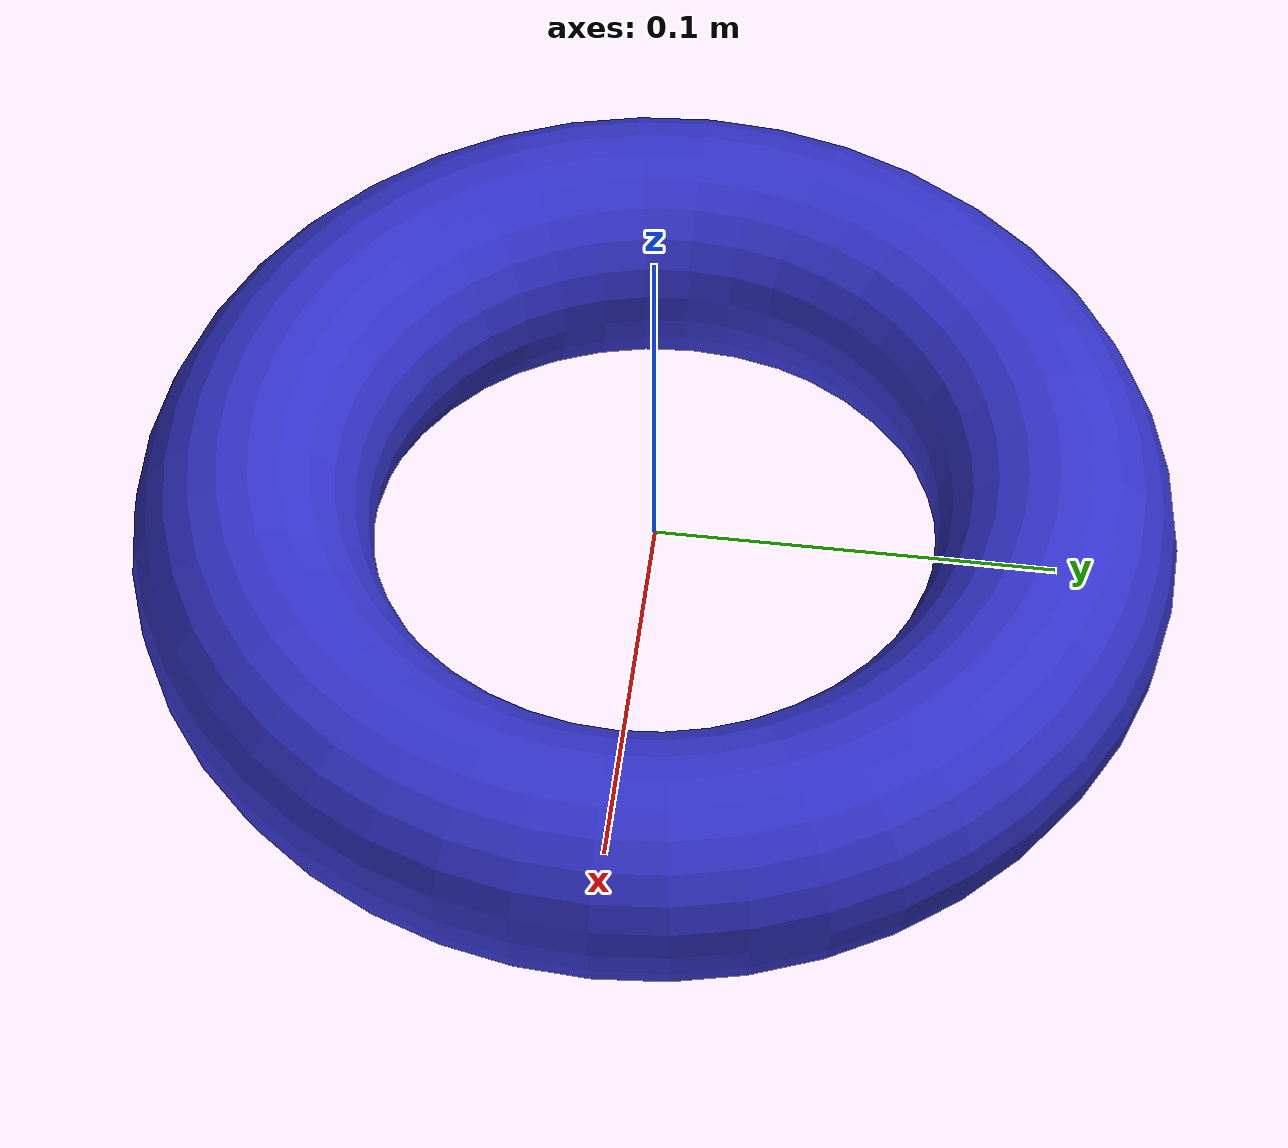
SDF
<?xml version='1.0'?>
    <sdf version='1.7'>
        <model name='disk_1'>
            <link name='torus_link'>
            <inertial>
                <mass>0.2</mass>
                <inertia>
                <ixx>0.001</ixx> <iyy>0.001</iyy> <izz>0.002</izz>
                <ixy>0</ixy> <ixz>0</ixz> <iyz>0</iyz>
                </inertia>
            </inertial>

            <visual name="visual">
                <geometry>
                <mesh>
                    <uri>objects/disk_1.obj</uri>
                </mesh>
                </geometry>
                <material>
                <diffuse>0.2 0.2 0.8 1.0</diffuse>
                </material>
            </visual>

        <collision name='col_0'>
            <pose>0.1000 0.0000 0 1.5708 0 1.5708</pose>
            <geometry>
            <capsule> <radius>0.03</radius> <length>0.010799224746714915</length> </capsule>
            </geometry>
            <surface>
                <friction>
                    <ode>
                        <mu>2.0</mu>
                        <mu2>2.0</mu2>
                    </ode>
                </friction>
                <contact>
                    <ode>
                        <kp>1000000</kp>
                        <kd>100</kd>
                    </ode>
                </contact>
            </surface>
        </collision>

        <collision name='col_1'>
            <pose>0.0995 0.0098 0 1.5708 0 1.6690</pose>
            <geometry>
            <capsule> <radius>0.03</radius> <length>0.010799224746714915</length> </capsule>
            </geometry>
            <surface>
                <friction>
                    <ode>
                        <mu>2.0</mu>
                        <mu2>2.0</mu2>
                    </ode>
                </friction>
                <contact>
                    <ode>
                        <kp>1000000</kp>
                        <kd>100</kd>
                    </ode>
                </contact>
            </surface>
        </collision>

        <collision name='col_2'>
            <pose>0.0981 0.0195 0 1.5708 0 1.7671</pose>
            <geometry>
            <capsule> <radius>0.03</radius> <length>0.010799224746714915</length> </capsule>
            </geometry>
            <surface>
                <friction>
                    <ode>
                        <mu>2.0</mu>
                        <mu2>2.0</mu2>
                    </ode>
                </friction>
                <contact>
                    <ode>
                        <kp>1000000</kp>
                        <kd>100</kd>
                    </ode>
                </contact>
            </surface>
        </collision>

        <collision name='col_3'>
            <pose>0.0957 0.0290 0 1.5708 0 1.8653</pose>
            <geometry>
            <capsule> <radius>0.03</radius> <length>0.010799224746714915</length> </capsule>
            </geometry>
            <surface>
                <friction>
                    <ode>
                        <mu>2.0</mu>
                        <mu2>2.0</mu2>
                    </ode>
                </friction>
                <contact>
                    <ode>
                        <kp>1000000</kp>
                        <kd>100</kd>
                    </ode>
                </contact>
            </surface>
        </collision>

        <collision name='col_4'>
            <pose>0.0924 0.0383 0 1.5708 0 1.9635</pose>
            <geometry>
            <capsule> <radius>0.03</radius> <length>0.010799224746714915</length> </capsule>
            </geometry>
            <surface>
                <friction>
                    <ode>
                        <mu>2.0</mu>
                        <mu2>2.0</mu2>
                    </ode>
                </friction>
                <contact>
                    <ode>
                        <kp>1000000</kp>
                        <kd>100</kd>
                    </ode>
                </contact>
            </surface>
        </collision>

        <collision name='col_5'>
            <pose>0.0882 0.0471 0 1.5708 0 2.0617</pose>
            <geometry>
            <capsule> <radius>0.03</radius> <length>0.010799224746714915</length> </capsule>
            </geometry>
            <surface>
                <friction>
                    <ode>
                        <mu>2.0</mu>
                        <mu2>2.0</mu2>
                    </ode>
                </friction>
                <contact>
                    <ode>
                        <kp>1000000</kp>
                        <kd>100</kd>
                    </ode>
                </contact>
            </surface>
        </collision>

        <collision name='col_6'>
            <pose>0.0831 0.0556 0 1.5708 0 2.1598</pose>
            <geometry>
            <capsule> <radius>0.03</radius> <length>0.010799224746714915</length> </capsule>
            </geometry>
            <surface>
                <friction>
                    <ode>
                        <mu>2.0</mu>
                        <mu2>2.0</mu2>
                    </ode>
                </friction>
                <contact>
                    <ode>
                        <kp>1000000</kp>
                        <kd>100</kd>
                    </ode>
                </contact>
            </surface>
        </collision>

        <collision name='col_7'>
            <pose>0.0773 0.0634 0 1.5708 0 2.2580</pose>
            <geometry>
            <capsule> <radius>0.03</radius> <length>0.010799224746714915</length> </capsule>
            </geometry>
            <surface>
                <friction>
                    <ode>
                        <mu>2.0</mu>
                        <mu2>2.0</mu2>
                    </ode>
                </friction>
                <contact>
                    <ode>
                        <kp>1000000</kp>
                        <kd>100</kd>
                    </ode>
                </contact>
            </surface>
        </collision>

        <collision name='col_8'>
            <pose>0.0707 0.0707 0 1.5708 0 2.3562</pose>
            <geometry>
            <capsule> <radius>0.03</radius> <length>0.010799224746714915</length> </capsule>
            </geometry>
            <surface>
                <friction>
                    <ode>
                        <mu>2.0</mu>
                        <mu2>2.0</mu2>
                    </ode>
                </friction>
                <contact>
                    <ode>
                        <kp>1000000</kp>
                        <kd>100</kd>
                    </ode>
                </contact>
            </surface>
        </collision>

        <collision name='col_9'>
            <pose>0.0634 0.0773 0 1.5708 0 2.4544</pose>
            <geometry>
            <capsule> <radius>0.03</radius> <length>0.010799224746714915</length> </capsule>
            </geometry>
            <surface>
                <friction>
                    <ode>
                        <mu>2.0</mu>
                        <mu2>2.0</mu2>
                    </ode>
                </friction>
                <contact>
                    <ode>
                        <kp>1000000</kp>
                        <kd>100</kd>
                    </ode>
                </contact>
            </surface>
        </collision>

        <collision name='col_10'>
            <pose>0.0556 0.0831 0 1.5708 0 2.5525</pose>
            <geometry>
            <capsule> <radius>0.03</radius> <length>0.010799224746714915</length> </capsule>
            </geometry>
            <surface>
                <friction>
                    <ode>
                        <mu>2.0</mu>
                        <mu2>2.0</mu2>
                    </ode>
                </friction>
                <contact>
                    <ode>
                        <kp>1000000</kp>
                        <kd>100</kd>
                    </ode>
                </contact>
            </surface>
        </collision>

        <collision name='col_11'>
            <pose>0.0471 0.0882 0 1.5708 0 2.6507</pose>
            <geometry>
            <capsule> <radius>0.03</radius> <length>0.010799224746714915</length> </capsule>
            </geometry>
            <surface>
                <friction>
                    <ode>
                        <mu>2.0</mu>
                        <mu2>2.0</mu2>
                    </ode>
                </friction>
                <contact>
                    <ode>
                        <kp>1000000</kp>
                        <kd>100</kd>
                    </ode>
                </contact>
            </surface>
        </collision>

        <collision name='col_12'>
            <pose>0.0383 0.0924 0 1.5708 0 2.7489</pose>
            <geometry>
            <capsule> <radius>0.03</radius> <length>0.010799224746714915</length> </capsule>
            </geometry>
            <surface>
                <friction>
                    <ode>
                        <mu>2.0</mu>
                        <mu2>2.0</mu2>
                    </ode>
                </friction>
                <contact>
                    <ode>
                        <kp>1000000</kp>
                        <kd>100</kd>
                    </ode>
                </contact>
            </surface>
        </collision>

        <collision name='col_13'>
            <pose>0.0290 0.0957 0 1.5708 0 2.8471</pose>
            <geometry>
            <capsule> <radius>0.03</radius> <length>0.010799224746714915</length> </capsule>
            </geometry>
            <surface>
                <friction>
                    <ode>
                        <mu>2.0</mu>
                        <mu2>2.0</mu2>
                    </ode>
                </friction>
                <contact>
                    <ode>
                        <kp>1000000</kp>
                        <kd>100</kd>
                    </ode>
                </contact>
            </surface>
        </collision>

        <collision name='col_14'>
            <pose>0.0195 0.0981 0 1.5708 0 2.9452</pose>
            <geometry>
            <capsule> <radius>0.03</radius> <length>0.010799224746714915</length> </capsule>
            </geometry>
            <surface>
                <friction>
                    <ode>
                        <mu>2.0</mu>
                        <mu2>2.0</mu2>
                    </ode>
                </friction>
                <contact>
                    <ode>
                        <kp>1000000</kp>
                        <kd>100</kd>
                    </ode>
                </contact>
            </surface>
        </collision>

        <collision name='col_15'>
            <pose>0.0098 0.0995 0 1.5708 0 3.0434</pose>
            <geometry>
            <capsule> <radius>0.03</radius> <length>0.010799224746714915</length> </capsule>
            </geometry>
            <surface>
                <friction>
                    <ode>
                        <mu>2.0</mu>
                        <mu2>2.0</mu2>
                    </ode>
                </friction>
                <contact>
                    <ode>
                        <kp>1000000</kp>
                        <kd>100</kd>
                    </ode>
                </contact>
            </surface>
        </collision>

        <collision name='col_16'>
            <pose>0.0000 0.1000 0 1.5708 0 3.1416</pose>
            <geometry>
            <capsule> <radius>0.03</radius> <length>0.010799224746714915</length> </capsule>
            </geometry>
            <surface>
                <friction>
                    <ode>
                        <mu>2.0</mu>
                        <mu2>2.0</mu2>
                    </ode>
                </friction>
                <contact>
                    <ode>
                        <kp>1000000</kp>
                        <kd>100</kd>
                    </ode>
                </contact>
            </surface>
        </collision>

        <collision name='col_17'>
            <pose>-0.0098 0.0995 0 1.5708 0 3.2398</pose>
            <geometry>
            <capsule> <radius>0.03</radius> <length>0.010799224746714915</length> </capsule>
            </geometry>
            <surface>
                <friction>
                    <ode>
                        <mu>2.0</mu>
                        <mu2>2.0</mu2>
                    </ode>
                </friction>
                <contact>
                    <ode>
                        <kp>1000000</kp>
                        <kd>100</kd>
                    </ode>
                </contact>
            </surface>
        </collision>

        <collision name='col_18'>
            <pose>-0.0195 0.0981 0 1.5708 0 3.3379</pose>
            <geometry>
            <capsule> <radius>0.03</radius> <length>0.010799224746714915</length> </capsule>
            </geometry>
            <surface>
                <friction>
                    <ode>
                        <mu>2.0</mu>
                        <mu2>2.0</mu2>
                    </ode>
                </friction>
                <contact>
                    <ode>
                        <kp>1000000</kp>
                        <kd>100</kd>
                    </ode>
                </contact>
            </surface>
        </collision>

        <collision name='col_19'>
            <pose>-0.0290 0.0957 0 1.5708 0 3.4361</pose>
            <geometry>
            <capsule> <radius>0.03</radius> <length>0.010799224746714915</length> </capsule>
            </geometry>
            <surface>
                <friction>
                    <ode>
                        <mu>2.0</mu>
                        <mu2>2.0</mu2>
                    </ode>
                </friction>
                <contact>
                    <ode>
                        <kp>1000000</kp>
                        <kd>100</kd>
                    </ode>
                </contact>
            </surface>
        </collision>

        <collision name='col_20'>
            <pose>-0.0383 0.0924 0 1.5708 0 3.5343</pose>
            <geometry>
            <capsule> <radius>0.03</radius> <length>0.010799224746714915</length> </capsule>
            </geometry>
            <surface>
                <friction>
                    <ode>
                        <mu>2.0</mu>
                        <mu2>2.0</mu2>
                    </ode>
                </friction>
                <contact>
                    <ode>
                        <kp>1000000</kp>
                        <kd>100</kd>
                    </ode>
                </contact>
            </surface>
        </collision>

        <collision name='col_21'>
            <pose>-0.0471 0.0882 0 1.5708 0 3.6325</pose>
            <geometry>
            <capsule> <radius>0.03</radius> <length>0.010799224746714915</length> </capsule>
            </geometry>
            <surface>
                <friction>
                    <ode>
                        <mu>2.0</mu>
                        <mu2>2.0</mu2>
                    </ode>
                </friction>
                <contact>
                    <ode>
                        <kp>1000000</kp>
                        <kd>100</kd>
                    </ode>
                </contact>
            </surface>
        </collision>

        <collision name='col_22'>
            <pose>-0.0556 0.0831 0 1.5708 0 3.7306</pose>
            <geometry>
            <capsule> <radius>0.03</radius> <length>0.010799224746714915</length> </capsule>
            </geometry>
            <surface>
                <friction>
                    <ode>
                        <mu>2.0</mu>
                        <mu2>2.0</mu2>
                    </ode>
                </friction>
                <contact>
                    <ode>
                        <kp>1000000</kp>
                        <kd>100</kd>
                    </ode>
                </contact>
            </surface>
        </collision>

        <collision name='col_23'>
            <pose>-0.0634 0.0773 0 1.5708 0 3.8288</pose>
            <geometry>
            <capsule> <radius>0.03</radius> <length>0.010799224746714915</length> </capsule>
            </geometry>
            <surface>
                <friction>
                    <ode>
                        <mu>2.0</mu>
                        <mu2>2.0</mu2>
                    </ode>
                </friction>
                <contact>
                    <ode>
                        <kp>1000000</kp>
                        <kd>100</kd>
                    </ode>
                </contact>
            </surface>
        </collision>

        <collision name='col_24'>
            <pose>-0.0707 0.0707 0 1.5708 0 3.9270</pose>
            <geometry>
            <capsule> <radius>0.03</radius> <length>0.010799224746714915</length> </capsule>
            </geometry>
            <surface>
                <friction>
                    <ode>
                        <mu>2.0</mu>
                        <mu2>2.0</mu2>
                    </ode>
                </friction>
                <contact>
                    <ode>
                        <kp>1000000</kp>
                        <kd>100</kd>
                    </ode>
                </contact>
            </surface>
        </collision>

        <collision name='col_25'>
            <pose>-0.0773 0.0634 0 1.5708 0 4.0252</pose>
            <geometry>
            <capsule> <radius>0.03</radius> <length>0.010799224746714915</length> </capsule>
            </geometry>
            <surface>
                <friction>
                    <ode>
                        <mu>2.0</mu>
                        <mu2>2.0</mu2>
                    </ode>
                </friction>
                <contact>
                    <ode>
                        <kp>1000000</kp>
                        <kd>100</kd>
                    </ode>
                </contact>
            </surface>
        </collision>

        <collision name='col_26'>
            <pose>-0.0831 0.0556 0 1.5708 0 4.1233</pose>
            <geometry>
            <capsule> <radius>0.03</radius> <length>0.010799224746714915</length> </capsule>
            </geometry>
            <surface>
                <friction>
                    <ode>
                        <mu>2.0</mu>
                        <mu2>2.0</mu2>
                    </ode>
                </friction>
                <contact>
                    <ode>
                        <kp>1000000</kp>
                        <kd>100</kd>
                    </ode>
                </contact>
            </surface>
        </collision>

        <collision name='col_27'>
            <pose>-0.0882 0.0471 0 1.5708 0 4.2215</pose>
            <geometry>
            <capsule> <radius>0.03</radius> <length>0.010799224746714915</length> </capsule>
            </geometry>
            <surface>
                <friction>
                    <ode>
                        <mu>2.0</mu>
                        <mu2>2.0</mu2>
                    </ode>
                </friction>
                <contact>
                    <ode>
                        <kp>1000000</kp>
                        <kd>100</kd>
                    </ode>
                </contact>
            </surface>
        </collision>

        <collision name='col_28'>
            <pose>-0.0924 0.0383 0 1.5708 0 4.3197</pose>
            <geometry>
            <capsule> <radius>0.03</radius> <length>0.010799224746714915</length> </capsule>
            </geometry>
            <surface>
                <friction>
                    <ode>
                        <mu>2.0</mu>
                        <mu2>2.0</mu2>
                    </ode>
                </friction>
                <contact>
                    <ode>
                        <kp>1000000</kp>
                        <kd>100</kd>
                    </ode>
                </contact>
            </surface>
        </collision>

        <collision name='col_29'>
            <pose>-0.0957 0.0290 0 1.5708 0 4.4179</pose>
            <geometry>
            <capsule> <radius>0.03</radius> <length>0.010799224746714915</length> </capsule>
            </geometry>
            <surface>
                <friction>
                    <ode>
                        <mu>2.0</mu>
                        <mu2>2.0</mu2>
                    </ode>
                </friction>
                <contact>
                    <ode>
                        <kp>1000000</kp>
                        <kd>100</kd>
                    </ode>
                </contact>
            </surface>
        </collision>

        <collision name='col_30'>
            <pose>-0.0981 0.0195 0 1.5708 0 4.5160</pose>
            <geometry>
            <capsule> <radius>0.03</radius> <length>0.010799224746714915</length> </capsule>
            </geometry>
            <surface>
                <friction>
                    <ode>
                        <mu>2.0</mu>
                        <mu2>2.0</mu2>
                    </ode>
                </friction>
                <contact>
                    <ode>
                        <kp>1000000</kp>
                        <kd>100</kd>
                    </ode>
                </contact>
            </surface>
        </collision>

        <collision name='col_31'>
            <pose>-0.0995 0.0098 0 1.5708 0 4.6142</pose>
            <geometry>
            <capsule> <radius>0.03</radius> <length>0.010799224746714915</length> </capsule>
            </geometry>
            <surface>
                <friction>
                    <ode>
                        <mu>2.0</mu>
                        <mu2>2.0</mu2>
                    </ode>
                </friction>
                <contact>
                    <ode>
                        <kp>1000000</kp>
                        <kd>100</kd>
                    </ode>
                </contact>
            </surface>
        </collision>

        <collision name='col_32'>
            <pose>-0.1000 0.0000 0 1.5708 0 4.7124</pose>
            <geometry>
            <capsule> <radius>0.03</radius> <length>0.010799224746714915</length> </capsule>
            </geometry>
            <surface>
                <friction>
                    <ode>
                        <mu>2.0</mu>
                        <mu2>2.0</mu2>
                    </ode>
                </friction>
                <contact>
                    <ode>
                        <kp>1000000</kp>
                        <kd>100</kd>
                    </ode>
                </contact>
            </surface>
        </collision>

        <collision name='col_33'>
            <pose>-0.0995 -0.0098 0 1.5708 0 4.8106</pose>
            <geometry>
            <capsule> <radius>0.03</radius> <length>0.010799224746714915</length> </capsule>
            </geometry>
            <surface>
                <friction>
                    <ode>
                        <mu>2.0</mu>
                        <mu2>2.0</mu2>
                    </ode>
                </friction>
                <contact>
                    <ode>
                        <kp>1000000</kp>
                        <kd>100</kd>
                    </ode>
                </contact>
            </surface>
        </collision>

        <collision name='col_34'>
            <pose>-0.0981 -0.0195 0 1.5708 0 4.9087</pose>
            <geometry>
            <capsule> <radius>0.03</radius> <length>0.010799224746714915</length> </capsule>
            </geometry>
            <surface>
                <friction>
                    <ode>
                        <mu>2.0</mu>
                        <mu2>2.0</mu2>
                    </ode>
                </friction>
                <contact>
                    <ode>
                        <kp>1000000</kp>
                        <kd>100</kd>
                    </ode>
                </contact>
            </surface>
        </collision>

        <collision name='col_35'>
            <pose>-0.0957 -0.0290 0 1.5708 0 5.0069</pose>
            <geometry>
            <capsule> <radius>0.03</radius> <length>0.010799224746714915</length> </capsule>
            </geometry>
            <surface>
                <friction>
                    <ode>
                        <mu>2.0</mu>
                        <mu2>2.0</mu2>
                    </ode>
                </friction>
                <contact>
                    <ode>
                        <kp>1000000</kp>
                        <kd>100</kd>
                    </ode>
                </contact>
            </surface>
        </collision>

        <collision name='col_36'>
            <pose>-0.0924 -0.0383 0 1.5708 0 5.1051</pose>
            <geometry>
            <capsule> <radius>0.03</radius> <length>0.010799224746714915</length> </capsule>
            </geometry>
            <surface>
                <friction>
                    <ode>
                        <mu>2.0</mu>
                        <mu2>2.0</mu2>
                    </ode>
                </friction>
                <contact>
                    <ode>
                        <kp>1000000</kp>
                        <kd>100</kd>
                    </ode>
                </contact>
            </surface>
        </collision>

        <collision name='col_37'>
            <pose>-0.0882 -0.0471 0 1.5708 0 5.2033</pose>
            <geometry>
            <capsule> <radius>0.03</radius> <length>0.010799224746714915</length> </capsule>
            </geometry>
            <surface>
                <friction>
                    <ode>
                        <mu>2.0</mu>
                        <mu2>2.0</mu2>
                    </ode>
                </friction>
                <contact>
                    <ode>
                        <kp>1000000</kp>
                        <kd>100</kd>
                    </ode>
                </contact>
            </surface>
        </collision>

        <collision name='col_38'>
            <pose>-0.0831 -0.0556 0 1.5708 0 5.3014</pose>
            <geometry>
            <capsule> <radius>0.03</radius> <length>0.010799224746714915</length> </capsule>
            </geometry>
            <surface>
                <friction>
                    <ode>
                        <mu>2.0</mu>
                        <mu2>2.0</mu2>
                    </ode>
                </friction>
                <contact>
                    <ode>
                        <kp>1000000</kp>
                        <kd>100</kd>
                    </ode>
                </contact>
            </surface>
        </collision>

        <collision name='col_39'>
            <pose>-0.0773 -0.0634 0 1.5708 0 5.3996</pose>
            <geometry>
            <capsule> <radius>0.03</radius> <length>0.010799224746714915</length> </capsule>
            </geometry>
            <surface>
                <friction>
                    <ode>
                        <mu>2.0</mu>
                        <mu2>2.0</mu2>
                    </ode>
                </friction>
                <contact>
                    <ode>
                        <kp>1000000</kp>
                        <kd>100</kd>
                    </ode>
                </contact>
            </surface>
        </collision>

        <collision name='col_40'>
            <pose>-0.0707 -0.0707 0 1.5708 0 5.4978</pose>
            <geometry>
            <capsule> <radius>0.03</radius> <length>0.010799224746714915</length> </capsule>
            </geometry>
            <surface>
                <friction>
                    <ode>
                        <mu>2.0</mu>
                        <mu2>2.0</mu2>
                    </ode>
                </friction>
                <contact>
                    <ode>
                        <kp>1000000</kp>
                        <kd>100</kd>
                    </ode>
                </contact>
            </surface>
        </collision>

        <collision name='col_41'>
            <pose>-0.0634 -0.0773 0 1.5708 0 5.5960</pose>
            <geometry>
            <capsule> <radius>0.03</radius> <length>0.010799224746714915</length> </capsule>
            </geometry>
            <surface>
                <friction>
                    <ode>
                        <mu>2.0</mu>
                        <mu2>2.0</mu2>
                    </ode>
                </friction>
                <contact>
                    <ode>
                        <kp>1000000</kp>
                        <kd>100</kd>
                    </ode>
                </contact>
            </surface>
        </collision>

        <collision name='col_42'>
            <pose>-0.0556 -0.0831 0 1.5708 0 5.6941</pose>
            <geometry>
            <capsule> <radius>0.03</radius> <length>0.010799224746714915</length> </capsule>
            </geometry>
            <surface>
                <friction>
                    <ode>
                        <mu>2.0</mu>
                        <mu2>2.0</mu2>
                    </ode>
                </friction>
                <contact>
                    <ode>
                        <kp>1000000</kp>
                        <kd>100</kd>
                    </ode>
                </contact>
            </surface>
        </collision>

        <collision name='col_43'>
            <pose>-0.0471 -0.0882 0 1.5708 0 5.7923</pose>
            <geometry>
            <capsule> <radius>0.03</radius> <length>0.010799224746714915</length> </capsule>
            </geometry>
            <surface>
                <friction>
                    <ode>
                        <mu>2.0</mu>
                        <mu2>2.0</mu2>
                    </ode>
                </friction>
                <contact>
                    <ode>
                        <kp>1000000</kp>
                        <kd>100</kd>
                    </ode>
                </contact>
            </surface>
        </collision>

        <collision name='col_44'>
            <pose>-0.0383 -0.0924 0 1.5708 0 5.8905</pose>
            <geometry>
            <capsule> <radius>0.03</radius> <length>0.010799224746714915</length> </capsule>
            </geometry>
            <surface>
                <friction>
                    <ode>
                        <mu>2.0</mu>
                        <mu2>2.0</mu2>
                    </ode>
                </friction>
                <contact>
                    <ode>
                        <kp>1000000</kp>
                        <kd>100</kd>
                    </ode>
                </contact>
            </surface>
        </collision>

        <collision name='col_45'>
            <pose>-0.0290 -0.0957 0 1.5708 0 5.9887</pose>
            <geometry>
            <capsule> <radius>0.03</radius> <length>0.010799224746714915</length> </capsule>
            </geometry>
            <surface>
                <friction>
                    <ode>
                        <mu>2.0</mu>
                        <mu2>2.0</mu2>
                    </ode>
                </friction>
                <contact>
                    <ode>
                        <kp>1000000</kp>
                        <kd>100</kd>
                    </ode>
                </contact>
            </surface>
        </collision>

        <collision name='col_46'>
            <pose>-0.0195 -0.0981 0 1.5708 0 6.0868</pose>
            <geometry>
            <capsule> <radius>0.03</radius> <length>0.010799224746714915</length> </capsule>
            </geometry>
            <surface>
                <friction>
                    <ode>
                        <mu>2.0</mu>
                        <mu2>2.0</mu2>
                    </ode>
                </friction>
                <contact>
                    <ode>
                        <kp>1000000</kp>
                        <kd>100</kd>
                    </ode>
                </contact>
            </surface>
        </collision>

        <collision name='col_47'>
            <pose>-0.0098 -0.0995 0 1.5708 0 6.1850</pose>
            <geometry>
            <capsule> <radius>0.03</radius> <length>0.010799224746714915</length> </capsule>
            </geometry>
            <surface>
                <friction>
                    <ode>
                        <mu>2.0</mu>
                        <mu2>2.0</mu2>
                    </ode>
                </friction>
                <contact>
                    <ode>
                        <kp>1000000</kp>
                        <kd>100</kd>
                    </ode>
                </contact>
            </surface>
        </collision>

        <collision name='col_48'>
            <pose>-0.0000 -0.1000 0 1.5708 0 6.2832</pose>
            <geometry>
            <capsule> <radius>0.03</radius> <length>0.010799224746714915</length> </capsule>
            </geometry>
            <surface>
                <friction>
                    <ode>
                        <mu>2.0</mu>
                        <mu2>2.0</mu2>
                    </ode>
                </friction>
                <contact>
                    <ode>
                        <kp>1000000</kp>
                        <kd>100</kd>
                    </ode>
                </contact>
            </surface>
        </collision>

        <collision name='col_49'>
            <pose>0.0098 -0.0995 0 1.5708 0 6.3814</pose>
            <geometry>
            <capsule> <radius>0.03</radius> <length>0.010799224746714915</length> </capsule>
            </geometry>
            <surface>
                <friction>
                    <ode>
                        <mu>2.0</mu>
                        <mu2>2.0</mu2>
                    </ode>
                </friction>
                <contact>
                    <ode>
                        <kp>1000000</kp>
                        <kd>100</kd>
                    </ode>
                </contact>
            </surface>
        </collision>

        <collision name='col_50'>
            <pose>0.0195 -0.0981 0 1.5708 0 6.4795</pose>
            <geometry>
            <capsule> <radius>0.03</radius> <length>0.010799224746714915</length> </capsule>
            </geometry>
            <surface>
                <friction>
                    <ode>
                        <mu>2.0</mu>
                        <mu2>2.0</mu2>
                    </ode>
                </friction>
                <contact>
                    <ode>
                        <kp>1000000</kp>
                        <kd>100</kd>
                    </ode>
                </contact>
            </surface>
        </collision>

        <collision name='col_51'>
            <pose>0.0290 -0.0957 0 1.5708 0 6.5777</pose>
            <geometry>
            <capsule> <radius>0.03</radius> <length>0.010799224746714915</length> </capsule>
            </geometry>
            <surface>
                <friction>
                    <ode>
                        <mu>2.0</mu>
                        <mu2>2.0</mu2>
                    </ode>
                </friction>
                <contact>
                    <ode>
                        <kp>1000000</kp>
                        <kd>100</kd>
                    </ode>
                </contact>
            </surface>
        </collision>

        <collision name='col_52'>
            <pose>0.0383 -0.0924 0 1.5708 0 6.6759</pose>
            <geometry>
            <capsule> <radius>0.03</radius> <length>0.010799224746714915</length> </capsule>
            </geometry>
            <surface>
                <friction>
                    <ode>
                        <mu>2.0</mu>
                        <mu2>2.0</mu2>
                    </ode>
                </friction>
                <contact>
                    <ode>
                        <kp>1000000</kp>
                        <kd>100</kd>
                    </ode>
                </contact>
            </surface>
        </collision>

        <collision name='col_53'>
            <pose>0.0471 -0.0882 0 1.5708 0 6.7741</pose>
            <geometry>
            <capsule> <radius>0.03</radius> <length>0.010799224746714915</length> </capsule>
            </geometry>
            <surface>
                <friction>
                    <ode>
                        <mu>2.0</mu>
                        <mu2>2.0</mu2>
                    </ode>
                </friction>
                <contact>
                    <ode>
                        <kp>1000000</kp>
                        <kd>100</kd>
                    </ode>
                </contact>
            </surface>
        </collision>

        <collision name='col_54'>
            <pose>0.0556 -0.0831 0 1.5708 0 6.8722</pose>
            <geometry>
            <capsule> <radius>0.03</radius> <length>0.010799224746714915</length> </capsule>
            </geometry>
            <surface>
                <friction>
                    <ode>
                        <mu>2.0</mu>
                        <mu2>2.0</mu2>
                    </ode>
                </friction>
                <contact>
                    <ode>
                        <kp>1000000</kp>
                        <kd>100</kd>
                    </ode>
                </contact>
            </surface>
        </collision>

        <collision name='col_55'>
            <pose>0.0634 -0.0773 0 1.5708 0 6.9704</pose>
            <geometry>
            <capsule> <radius>0.03</radius> <length>0.010799224746714915</length> </capsule>
            </geometry>
            <surface>
                <friction>
                    <ode>
                        <mu>2.0</mu>
                        <mu2>2.0</mu2>
                    </ode>
                </friction>
                <contact>
                    <ode>
                        <kp>1000000</kp>
                        <kd>100</kd>
                    </ode>
                </contact>
            </surface>
        </collision>

        <collision name='col_56'>
            <pose>0.0707 -0.0707 0 1.5708 0 7.0686</pose>
            <geometry>
            <capsule> <radius>0.03</radius> <length>0.010799224746714915</length> </capsule>
            </geometry>
            <surface>
                <friction>
                    <ode>
                        <mu>2.0</mu>
                        <mu2>2.0</mu2>
                    </ode>
                </friction>
                <contact>
                    <ode>
                        <kp>1000000</kp>
                        <kd>100</kd>
                    </ode>
                </contact>
            </surface>
        </collision>

        <collision name='col_57'>
            <pose>0.0773 -0.0634 0 1.5708 0 7.1668</pose>
            <geometry>
            <capsule> <radius>0.03</radius> <length>0.010799224746714915</length> </capsule>
            </geometry>
            <surface>
                <friction>
                    <ode>
                        <mu>2.0</mu>
                        <mu2>2.0</mu2>
                    </ode>
                </friction>
                <contact>
                    <ode>
                        <kp>1000000</kp>
                        <kd>100</kd>
                    </ode>
                </contact>
            </surface>
        </collision>

        <collision name='col_58'>
            <pose>0.0831 -0.0556 0 1.5708 0 7.2649</pose>
            <geometry>
            <capsule> <radius>0.03</radius> <length>0.010799224746714915</length> </capsule>
            </geometry>
            <surface>
                <friction>
                    <ode>
                        <mu>2.0</mu>
                        <mu2>2.0</mu2>
                    </ode>
                </friction>
                <contact>
                    <ode>
                        <kp>1000000</kp>
                        <kd>100</kd>
                    </ode>
                </contact>
            </surface>
        </collision>

        <collision name='col_59'>
            <pose>0.0882 -0.0471 0 1.5708 0 7.3631</pose>
            <geometry>
            <capsule> <radius>0.03</radius> <length>0.010799224746714915</length> </capsule>
            </geometry>
            <surface>
                <friction>
                    <ode>
                        <mu>2.0</mu>
                        <mu2>2.0</mu2>
                    </ode>
                </friction>
                <contact>
                    <ode>
                        <kp>1000000</kp>
                        <kd>100</kd>
                    </ode>
                </contact>
            </surface>
        </collision>

        <collision name='col_60'>
            <pose>0.0924 -0.0383 0 1.5708 0 7.4613</pose>
            <geometry>
            <capsule> <radius>0.03</radius> <length>0.010799224746714915</length> </capsule>
            </geometry>
            <surface>
                <friction>
                    <ode>
                        <mu>2.0</mu>
                        <mu2>2.0</mu2>
                    </ode>
                </friction>
                <contact>
                    <ode>
                        <kp>1000000</kp>
                        <kd>100</kd>
                    </ode>
                </contact>
            </surface>
        </collision>

        <collision name='col_61'>
            <pose>0.0957 -0.0290 0 1.5708 0 7.5595</pose>
            <geometry>
            <capsule> <radius>0.03</radius> <length>0.010799224746714915</length> </capsule>
            </geometry>
            <surface>
                <friction>
                    <ode>
                        <mu>2.0</mu>
                        <mu2>2.0</mu2>
                    </ode>
                </friction>
                <contact>
                    <ode>
                        <kp>1000000</kp>
                        <kd>100</kd>
                    </ode>
                </contact>
            </surface>
        </collision>

        <collision name='col_62'>
            <pose>0.0981 -0.0195 0 1.5708 0 7.6576</pose>
            <geometry>
            <capsule> <radius>0.03</radius> <length>0.010799224746714915</length> </capsule>
            </geometry>
            <surface>
                <friction>
                    <ode>
                        <mu>2.0</mu>
                        <mu2>2.0</mu2>
                    </ode>
                </friction>
                <contact>
                    <ode>
                        <kp>1000000</kp>
                        <kd>100</kd>
                    </ode>
                </contact>
            </surface>
        </collision>

        <collision name='col_63'>
            <pose>0.0995 -0.0098 0 1.5708 0 7.7558</pose>
            <geometry>
            <capsule> <radius>0.03</radius> <length>0.010799224746714915</length> </capsule>
            </geometry>
            <surface>
                <friction>
                    <ode>
                        <mu>2.0</mu>
                        <mu2>2.0</mu2>
                    </ode>
                </friction>
                <contact>
                    <ode>
                        <kp>1000000</kp>
                        <kd>100</kd>
                    </ode>
                </contact>
            </surface>
        </collision>

            </link>
        </model>
    </sdf>
